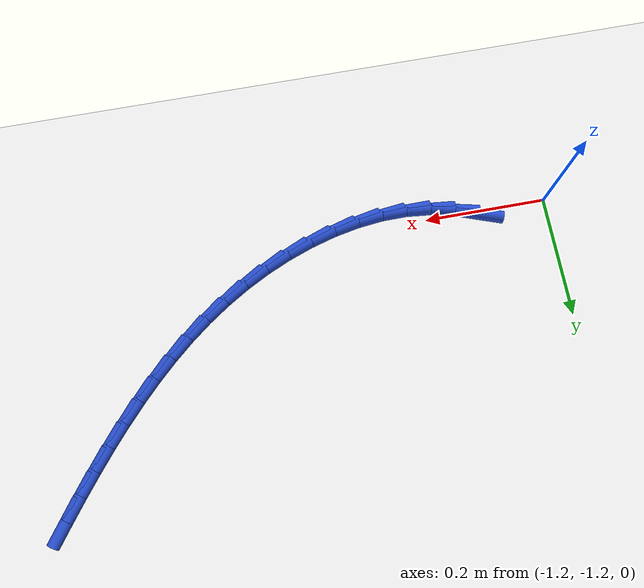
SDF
<sdf version="1.6">
 <world name="default">
  <model name="ground_plane">
   <static>1</static>
   <link name="link">
    <collision name="collision">
     <geometry><plane><normal>0 0 1</normal><size>100 100</size></plane></geometry>
     <surface><friction><ode><mu>100</mu><mu2>50</mu2></ode></friction></surface>
    </collision>
    <visual name="visual">
     <cast_shadows>0</cast_shadows>
     <geometry><plane><normal>0 0 1</normal><size>100 100</size></plane></geometry>
     <material>
      <script><uri>file://media/materials/scripts/gazebo.material</uri><name>Gazebo/WhiteGlow</name></script>
     </material>
    </visual>
   </link>
  </model>
  <model name="line">
   <link name="link_127">
    <pose>-1.0869612897169885 -1.1927496069053634 0.01 0 1.57 -0.3432492388283268</pose>
    <collision name="collision">
     <geometry><cylinder><radius>0.01</radius><length>0.08</length></cylinder></geometry>
    </collision>
    <visual name="visual">
     <material>
      <script><name>Gazebo/Blue</name><uri>file://media/materials/scripts/gazebo.material</uri></script>
     </material>
     <geometry><cylinder><radius>0.01</radius><length>0.08</length></cylinder></geometry>
    </visual>
   </link>
   <link name="link_128">
    <pose>-1.0490761207744104 -1.206289649335396 0.01 0 1.57 -0.22850802746193202</pose>
    <collision name="collision">
     <geometry><cylinder><radius>0.01</radius><length>0.08</length></cylinder></geometry>
    </collision>
    <visual name="visual">
     <material>
      <script><name>Gazebo/Blue</name><uri>file://media/materials/scripts/gazebo.material</uri></script>
     </material>
     <geometry><cylinder><radius>0.01</radius><length>0.08</length></cylinder></geometry>
    </visual>
   </link>
   <link name="link_129">
    <pose>-1.0099453631704052 -1.2153902952523532 0.01 0 1.57 -0.10152094364862466</pose>
    <collision name="collision">
     <geometry><cylinder><radius>0.01</radius><length>0.08</length></cylinder></geometry>
    </collision>
    <visual name="visual">
     <material>
      <script><name>Gazebo/Blue</name><uri>file://media/materials/scripts/gazebo.material</uri></script>
     </material>
     <geometry><cylinder><radius>0.01</radius><length>0.08</length></cylinder></geometry>
    </visual>
   </link>
   <link name="link_130">
    <pose>-0.9694914479586452 -1.2195113826349029 0.01 0 1.57 0.012599594152652127</pose>
    <collision name="collision">
     <geometry><cylinder><radius>0.01</radius><length>0.08</length></cylinder></geometry>
    </collision>
    <visual name="visual">
     <material>
      <script><name>Gazebo/Blue</name><uri>file://media/materials/scripts/gazebo.material</uri></script>
     </material>
     <geometry><cylinder><radius>0.01</radius><length>0.08</length></cylinder></geometry>
    </visual>
   </link>
   <link name="link_131">
    <pose>-0.9281370582609602 -1.2189903065344188 0.01 0 1.57 0.11327051452571353</pose>
    <collision name="collision">
     <geometry><cylinder><radius>0.01</radius><length>0.08</length></cylinder></geometry>
    </collision>
    <visual name="visual">
     <material>
      <script><name>Gazebo/Blue</name><uri>file://media/materials/scripts/gazebo.material</uri></script>
     </material>
     <geometry><cylinder><radius>0.01</radius><length>0.08</length></cylinder></geometry>
    </visual>
   </link>
   <link name="link_132">
    <pose>-0.8863457938482865 -1.2142362392064043 0.01 0 1.57 0.20256979668350386</pose>
    <collision name="collision">
     <geometry><cylinder><radius>0.01</radius><length>0.08</length></cylinder></geometry>
    </collision>
    <visual name="visual">
     <material>
      <script><name>Gazebo/Blue</name><uri>file://media/materials/scripts/gazebo.material</uri></script>
     </material>
     <geometry><cylinder><radius>0.01</radius><length>0.08</length></cylinder></geometry>
    </visual>
   </link>
   <link name="link_133">
    <pose>-0.8445812544915579 -1.2056583529063645 0.01 0 1.57 0.28277160627780534</pose>
    <collision name="collision">
     <geometry><cylinder><radius>0.01</radius><length>0.08</length></cylinder></geometry>
    </collision>
    <visual name="visual">
     <material>
      <script><name>Gazebo/Blue</name><uri>file://media/materials/scripts/gazebo.material</uri></script>
     </material>
     <geometry><cylinder><radius>0.01</radius><length>0.08</length></cylinder></geometry>
    </visual>
   </link>
   <link name="link_134">
    <pose>-0.803307039961709 -1.193665819889803 0.01 0 1.57 0.356113097636084</pose>
    <collision name="collision">
     <geometry><cylinder><radius>0.01</radius><length>0.08</length></cylinder></geometry>
    </collision>
    <visual name="visual">
     <material>
      <script><name>Gazebo/Blue</name><uri>file://media/materials/scripts/gazebo.material</uri></script>
     </material>
     <geometry><cylinder><radius>0.01</radius><length>0.08</length></cylinder></geometry>
    </visual>
   </link>
   <link name="link_135">
    <pose>-0.7629867500296753 -1.1786678124122245 0.01 0 1.57 0.42473483938074813</pose>
    <collision name="collision">
     <geometry><cylinder><radius>0.01</radius><length>0.08</length></cylinder></geometry>
    </collision>
    <visual name="visual">
     <material>
      <script><name>Gazebo/Blue</name><uri>file://media/materials/scripts/gazebo.material</uri></script>
     </material>
     <geometry><cylinder><radius>0.01</radius><length>0.08</length></cylinder></geometry>
    </visual>
   </link>
   <link name="link_136">
    <pose>-0.7240839587846302 -1.161073491446546 0.01 0 1.57 0.49049129987859874</pose>
    <collision name="collision">
     <geometry><cylinder><radius>0.01</radius><length>0.08</length></cylinder></geometry>
    </collision>
    <visual name="visual">
     <material>
      <script><name>Gazebo/Blue</name><uri>file://media/materials/scripts/gazebo.material</uri></script>
     </material>
     <geometry><cylinder><radius>0.01</radius><length>0.08</length></cylinder></geometry>
    </visual>
   </link>
   <link name="link_137">
    <pose>-0.6869444108302659 -1.1412402527686962 0.01 0 1.57 0.5534745728134618</pose>
    <collision name="collision">
     <geometry><cylinder><radius>0.01</radius><length>0.08</length></cylinder></geometry>
    </collision>
    <visual name="visual">
     <material>
      <script><name>Gazebo/Blue</name><uri>file://media/materials/scripts/gazebo.material</uri></script>
     </material>
     <geometry><cylinder><radius>0.01</radius><length>0.08</length></cylinder></geometry>
    </visual>
   </link>
   <link name="link_138">
    <pose>-0.6515245744233267 -1.11935447412206 0.01 0 1.57 0.6129142645849307</pose>
    <collision name="collision">
     <geometry><cylinder><radius>0.01</radius><length>0.08</length></cylinder></geometry>
    </collision>
    <visual name="visual">
     <material>
      <script><name>Gazebo/Blue</name><uri>file://media/materials/scripts/gazebo.material</uri></script>
     </material>
     <geometry><cylinder><radius>0.01</radius><length>0.08</length></cylinder></geometry>
    </visual>
   </link>
   <link name="link_139">
    <pose>-0.6177006397025024 -1.0955672652304924 0.01 0 1.57 0.6682246884549328</pose>
    <collision name="collision">
     <geometry><cylinder><radius>0.01</radius><length>0.08</length></cylinder></geometry>
    </collision>
    <visual name="visual">
     <material>
      <script><name>Gazebo/Blue</name><uri>file://media/materials/scripts/gazebo.material</uri></script>
     </material>
     <geometry><cylinder><radius>0.01</radius><length>0.08</length></cylinder></geometry>
    </visual>
   </link>
   <link name="link_140">
    <pose>-0.5853487968064832 -1.070029735817851 0.01 0 1.57 0.7189875279508318</pose>
    <collision name="collision">
     <geometry><cylinder><radius>0.01</radius><length>0.08</length></cylinder></geometry>
    </collision>
    <visual name="visual">
     <material>
      <script><name>Gazebo/Blue</name><uri>file://media/materials/scripts/gazebo.material</uri></script>
     </material>
     <geometry><cylinder><radius>0.01</radius><length>0.08</length></cylinder></geometry>
    </visual>
   </link>
   <link name="link_141">
    <pose>-0.5543452358739593 -1.0428929956079909 0.01 0 1.57 0.7649389360840902</pose>
    <collision name="collision">
     <geometry><cylinder><radius>0.01</radius><length>0.08</length></cylinder></geometry>
    </collision>
    <visual name="visual">
     <material>
      <script><name>Gazebo/Blue</name><uri>file://media/materials/scripts/gazebo.material</uri></script>
     </material>
     <geometry><cylinder><radius>0.01</radius><length>0.08</length></cylinder></geometry>
    </visual>
   </link>
   <link name="link_142">
    <pose>-0.5245661470436196 -1.0143081543247678 0.01 0 1.57 0.805945147030136</pose>
    <collision name="collision">
     <geometry><cylinder><radius>0.01</radius><length>0.08</length></cylinder></geometry>
    </collision>
    <visual name="visual">
     <material>
      <script><name>Gazebo/Blue</name><uri>file://media/materials/scripts/gazebo.material</uri></script>
     </material>
     <geometry><cylinder><radius>0.01</radius><length>0.08</length></cylinder></geometry>
    </visual>
   </link>
   <link name="link_143">
    <pose>-0.49588772045415563 -0.9844263216920389 0.01 0 1.57 0.8419728423217483</pose>
    <collision name="collision">
     <geometry><cylinder><radius>0.01</radius><length>0.08</length></cylinder></geometry>
    </collision>
    <visual name="visual">
     <material>
      <script><name>Gazebo/Blue</name><uri>file://media/materials/scripts/gazebo.material</uri></script>
     </material>
     <geometry><cylinder><radius>0.01</radius><length>0.08</length></cylinder></geometry>
    </visual>
   </link>
   <link name="link_144">
    <pose>-0.4681861462442564 -0.9533986074336603 0.01 0 1.57 0.8730592035918621</pose>
    <collision name="collision">
     <geometry><cylinder><radius>0.01</radius><length>0.08</length></cylinder></geometry>
    </collision>
    <visual name="visual">
     <material>
      <script><name>Gazebo/Blue</name><uri>file://media/materials/scripts/gazebo.material</uri></script>
     </material>
     <geometry><cylinder><radius>0.01</radius><length>0.08</length></cylinder></geometry>
    </visual>
   </link>
   <link name="link_145">
    <pose>-0.4413376145526122 -0.9213761212734879 0.01 0 1.57 0.8992848098930036</pose>
    <collision name="collision">
     <geometry><cylinder><radius>0.01</radius><length>0.08</length></cylinder></geometry>
    </collision>
    <visual name="visual">
     <material>
      <script><name>Gazebo/Blue</name><uri>file://media/materials/scripts/gazebo.material</uri></script>
     </material>
     <geometry><cylinder><radius>0.01</radius><length>0.08</length></cylinder></geometry>
    </visual>
   </link>
   <link name="link_146">
    <pose>-0.41521831551791294 -0.8885099729353777 0.01 0 1.57 0.9207509242443217</pose>
    <collision name="collision">
     <geometry><cylinder><radius>0.01</radius><length>0.08</length></cylinder></geometry>
    </collision>
    <visual name="visual">
     <material>
      <script><name>Gazebo/Blue</name><uri>file://media/materials/scripts/gazebo.material</uri></script>
     </material>
     <geometry><cylinder><radius>0.01</radius><length>0.08</length></cylinder></geometry>
    </visual>
   </link>
   <link name="link_147">
    <pose>-0.389704439278848 -0.8549512721431851 0.01 0 1.57 0.9375615448283939</pose>
    <collision name="collision">
     <geometry><cylinder><radius>0.01</radius><length>0.08</length></cylinder></geometry>
    </collision>
    <visual name="visual">
     <material>
      <script><name>Gazebo/Blue</name><uri>file://media/materials/scripts/gazebo.material</uri></script>
     </material>
     <geometry><cylinder><radius>0.01</radius><length>0.08</length></cylinder></geometry>
    </visual>
   </link>
   <link name="link_148">
    <pose>-0.36467217597410834 -0.8208511286207678 0.01 0 1.57 0.9498099033793408</pose>
    <collision name="collision">
     <geometry><cylinder><radius>0.01</radius><length>0.08</length></cylinder></geometry>
    </collision>
    <visual name="visual">
     <material>
      <script><name>Gazebo/Blue</name><uri>file://media/materials/scripts/gazebo.material</uri></script>
     </material>
     <geometry><cylinder><radius>0.01</radius><length>0.08</length></cylinder></geometry>
    </visual>
   </link>
  </model>
 </world>
</sdf>
